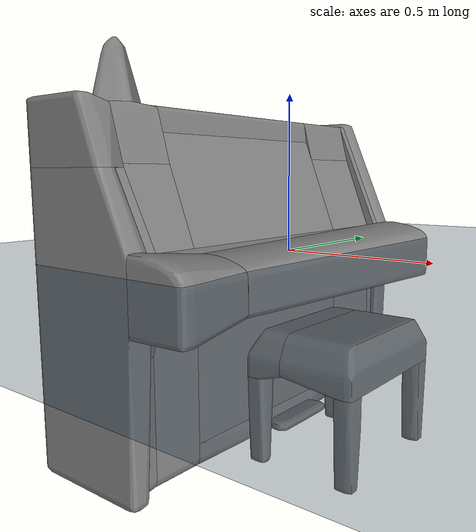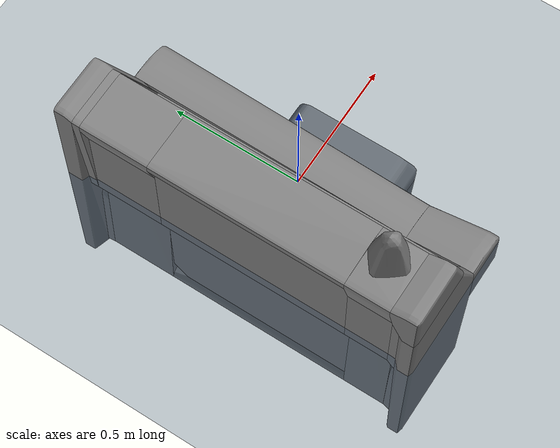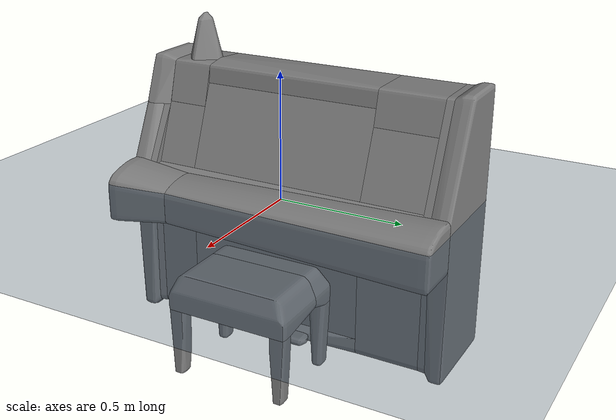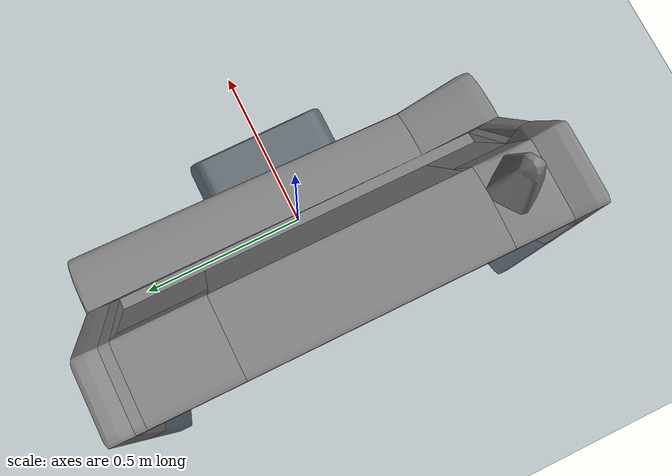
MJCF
<mujoco model="scene">
    <option cone="elliptic" impratio="10"/>
    <statistic center="0.4 0 0.4" extent="1"/>
    <compiler autolimits="true" angle="radian" meshdir="."/>
    <option impratio="10" integrator="implicitfast" cone="elliptic" noslip_iterations="2"/>

    <default>
        <default class="visual">
        <geom group="2" type="mesh" contype="0" conaffinity="0"/>
        </default>
        <default class="collision">
        <geom group="2" type="mesh" condim="4"/>
        </default>
    </default>

    <visual>
        <headlight diffuse="0.6 0.6 0.6" ambient="0.1 0.1 0.1" specular="0 0 0"/>
        <rgba haze="0.15 0.25 0.35 1"/>
        <global azimuth="120" elevation="-20"/>
    </visual>

    <asset>
        <mesh name="convex_piece_028.obj" file="meshes/convex_piece_028.obj"  scale="1.0 1.0 1.0"/>
<mesh name="convex_piece_018.obj" file="meshes/convex_piece_018.obj"  scale="1.0 1.0 1.0"/>
<mesh name="convex_piece_026.obj" file="meshes/convex_piece_026.obj"  scale="1.0 1.0 1.0"/>
<mesh name="convex_piece_021.obj" file="meshes/convex_piece_021.obj"  scale="1.0 1.0 1.0"/>
<mesh name="convex_piece_012.obj" file="meshes/convex_piece_012.obj"  scale="1.0 1.0 1.0"/>
<mesh name="convex_piece_019.obj" file="meshes/convex_piece_019.obj"  scale="1.0 1.0 1.0"/>
<mesh name="convex_piece_014.obj" file="meshes/convex_piece_014.obj"  scale="1.0 1.0 1.0"/>
<mesh name="convex_piece_020.obj" file="meshes/convex_piece_020.obj"  scale="1.0 1.0 1.0"/>
<mesh name="convex_piece_004.obj" file="meshes/convex_piece_004.obj"  scale="1.0 1.0 1.0"/>
<mesh name="convex_piece_027.obj" file="meshes/convex_piece_027.obj"  scale="1.0 1.0 1.0"/>
<mesh name="convex_piece_001.obj" file="meshes/convex_piece_001.obj"  scale="1.0 1.0 1.0"/>
<mesh name="convex_piece_015.obj" file="meshes/convex_piece_015.obj"  scale="1.0 1.0 1.0"/>
<mesh name="convex_piece_005.obj" file="meshes/convex_piece_005.obj"  scale="1.0 1.0 1.0"/>
<mesh name="convex_piece_024.obj" file="meshes/convex_piece_024.obj"  scale="1.0 1.0 1.0"/>
<mesh name="convex_piece_013.obj" file="meshes/convex_piece_013.obj"  scale="1.0 1.0 1.0"/>
<mesh name="convex_piece_029.obj" file="meshes/convex_piece_029.obj"  scale="1.0 1.0 1.0"/>
<mesh name="convex_piece_002.obj" file="meshes/convex_piece_002.obj"  scale="1.0 1.0 1.0"/>
<mesh name="convex_piece_025.obj" file="meshes/convex_piece_025.obj"  scale="1.0 1.0 1.0"/>
<mesh name="convex_piece_010.obj" file="meshes/convex_piece_010.obj"  scale="1.0 1.0 1.0"/>
<mesh name="convex_piece_006.obj" file="meshes/convex_piece_006.obj"  scale="1.0 1.0 1.0"/>
<mesh name="convex_piece_003.obj" file="meshes/convex_piece_003.obj"  scale="1.0 1.0 1.0"/>
<mesh name="convex_piece_008.obj" file="meshes/convex_piece_008.obj"  scale="1.0 1.0 1.0"/>
<mesh name="convex_piece_023.obj" file="meshes/convex_piece_023.obj"  scale="1.0 1.0 1.0"/>
<mesh name="convex_piece_022.obj" file="meshes/convex_piece_022.obj"  scale="1.0 1.0 1.0"/>
<mesh name="convex_piece_011.obj" file="meshes/convex_piece_011.obj"  scale="1.0 1.0 1.0"/>
<mesh name="convex_piece_000.obj" file="meshes/convex_piece_000.obj"  scale="1.0 1.0 1.0"/>
<mesh name="convex_piece_016.obj" file="meshes/convex_piece_016.obj"  scale="1.0 1.0 1.0"/>
<mesh name="convex_piece_009.obj" file="meshes/convex_piece_009.obj"  scale="1.0 1.0 1.0"/>
<mesh name="convex_piece_007.obj" file="meshes/convex_piece_007.obj"  scale="1.0 1.0 1.0"/>
<mesh name="convex_piece_017.obj" file="meshes/convex_piece_017.obj"  scale="1.0 1.0 1.0"/>

        <material name="black" specular="0.5" shininess="0.25" rgba="0.16355 0.16355 0.16355 1"/>
        <texture type="skybox" builtin="gradient" rgb1="0.3 0.5 0.7" rgb2="0 0 0" width="512" height="3072"/>
        <texture type="2d" name="groundplane" builtin="checker" mark="edge" rgb1="0.2 0.3 0.4" rgb2="0.1 0.2 0.3"
        markrgb="0.8 0.8 0.8" width="300" height="300"/>
        <material name="groundplane" texture="groundplane" texuniform="true" texrepeat="5 5" reflectance="0.2"/>
    </asset>

    <worldbody>
        <light name="spotlight1" mode="targetbodycom" target="decomposed" pos="0 -1 2"/>
        <camera name="closeup1" pos="0.5 0.25 1.3" xyaxes="-1 0 0 0 -0.6 0.8"/>
        <camera name="closeup2" pos="0.5 0.0 0.8" xyaxes="1 0 0 0 -1 0"/>
        <camera name="closeup3" pos="0.1 0 1.05" xyaxes="0 -1 0 0 0 1"/>
        <camera name="closeup4"  pos="0.5 0 1.4" xyaxes="0 -1 0 1 0 0"/>
        <camera name="closeup5"  pos="0 -0.3 0.1" xyaxes="1 0 0 0 0 1"/>
        <camera name="closeup" pos="0  -0.3 0.1" xyaxes="1 0 0 0 0 1"/>
        <geom name="floor" size="0 0 0.05" type="plane" material="groundplane"/>
        <body name="decomposed" quat="1 0 0 1" pos="0 0 0">
        <freejoint/>
        <geom mesh="convex_piece_028.obj" name="object_collision_0" class="collision"/>
<geom mesh="convex_piece_018.obj" name="object_collision_1" class="collision"/>
<geom mesh="convex_piece_026.obj" name="object_collision_2" class="collision"/>
<geom mesh="convex_piece_021.obj" name="object_collision_3" class="collision"/>
<geom mesh="convex_piece_012.obj" name="object_collision_4" class="collision"/>
<geom mesh="convex_piece_019.obj" name="object_collision_5" class="collision"/>
<geom mesh="convex_piece_014.obj" name="object_collision_6" class="collision"/>
<geom mesh="convex_piece_020.obj" name="object_collision_7" class="collision"/>
<geom mesh="convex_piece_004.obj" name="object_collision_8" class="collision"/>
<geom mesh="convex_piece_027.obj" name="object_collision_9" class="collision"/>
<geom mesh="convex_piece_001.obj" name="object_collision_10" class="collision"/>
<geom mesh="convex_piece_015.obj" name="object_collision_11" class="collision"/>
<geom mesh="convex_piece_005.obj" name="object_collision_12" class="collision"/>
<geom mesh="convex_piece_024.obj" name="object_collision_13" class="collision"/>
<geom mesh="convex_piece_013.obj" name="object_collision_14" class="collision"/>
<geom mesh="convex_piece_029.obj" name="object_collision_15" class="collision"/>
<geom mesh="convex_piece_002.obj" name="object_collision_16" class="collision"/>
<geom mesh="convex_piece_025.obj" name="object_collision_17" class="collision"/>
<geom mesh="convex_piece_010.obj" name="object_collision_18" class="collision"/>
<geom mesh="convex_piece_006.obj" name="object_collision_19" class="collision"/>
<geom mesh="convex_piece_003.obj" name="object_collision_20" class="collision"/>
<geom mesh="convex_piece_008.obj" name="object_collision_21" class="collision"/>
<geom mesh="convex_piece_023.obj" name="object_collision_22" class="collision"/>
<geom mesh="convex_piece_022.obj" name="object_collision_23" class="collision"/>
<geom mesh="convex_piece_011.obj" name="object_collision_24" class="collision"/>
<geom mesh="convex_piece_000.obj" name="object_collision_25" class="collision"/>
<geom mesh="convex_piece_016.obj" name="object_collision_26" class="collision"/>
<geom mesh="convex_piece_009.obj" name="object_collision_27" class="collision"/>
<geom mesh="convex_piece_007.obj" name="object_collision_28" class="collision"/>
<geom mesh="convex_piece_017.obj" name="object_collision_29" class="collision"/>

        </body>
    </worldbody>
    <keyframe>
        <key name="home" qpos="0 0 0.8 1 0 0 0"/>
    </keyframe>
    </mujoco>
